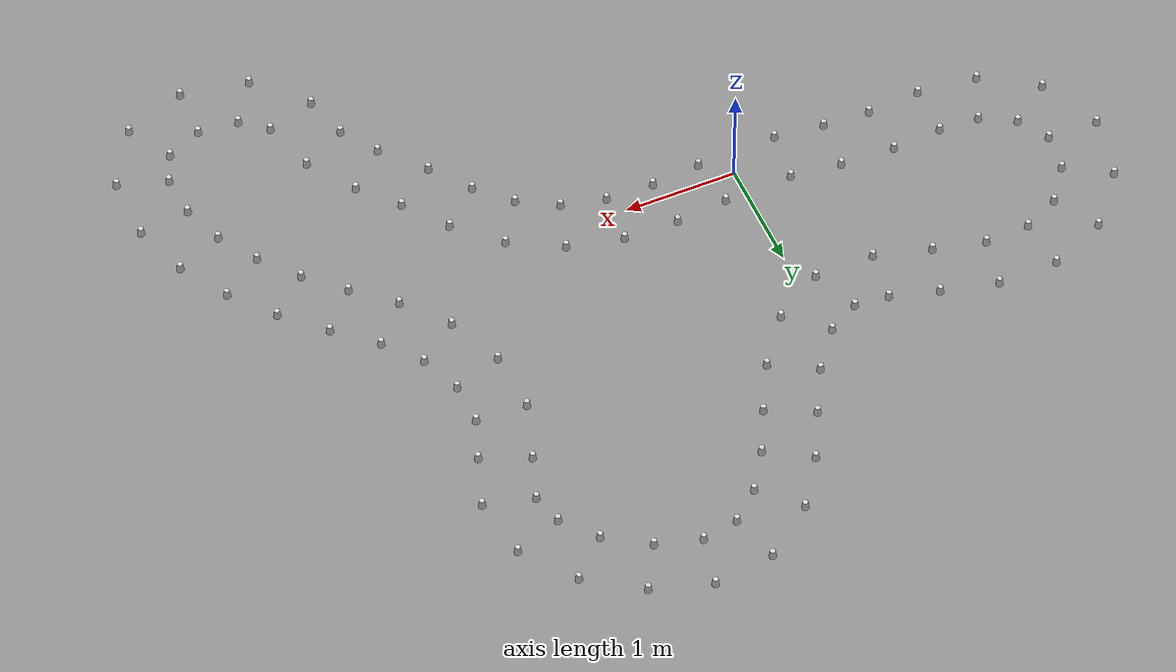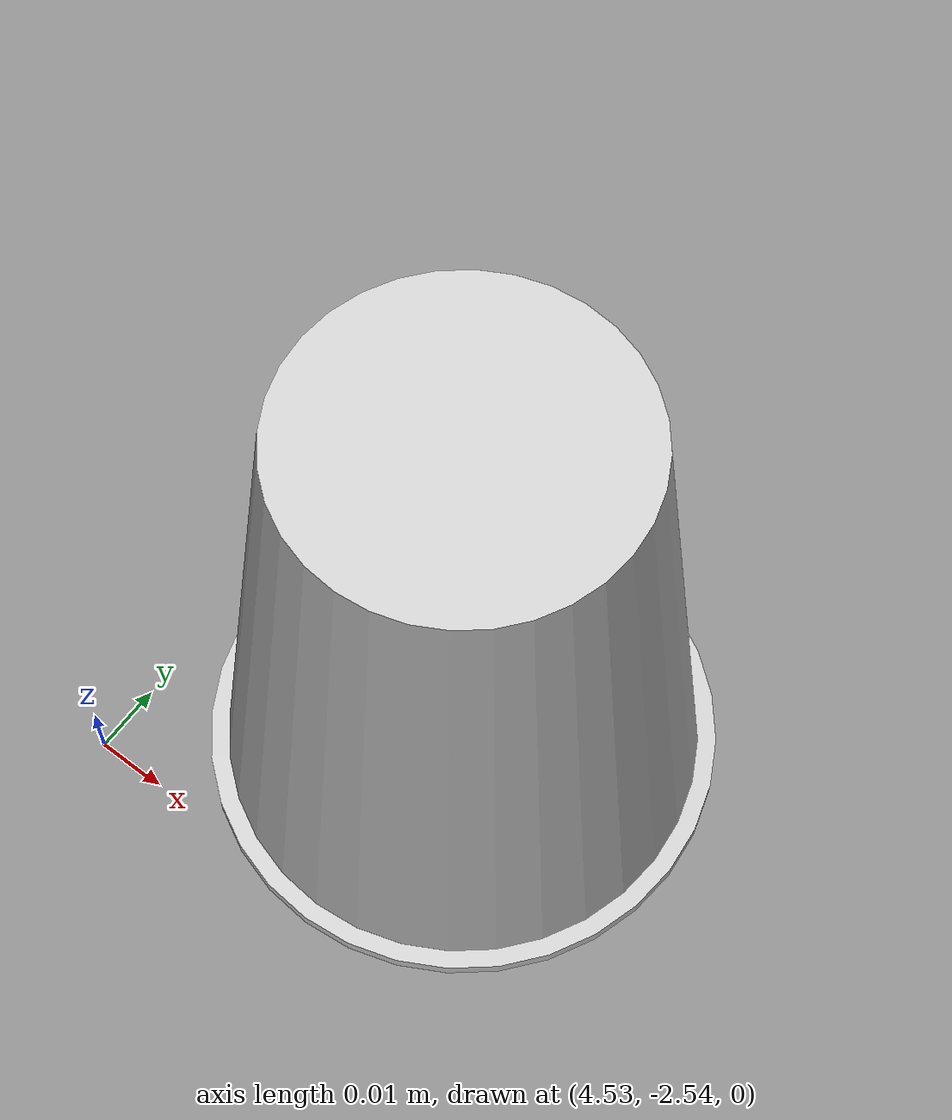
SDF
<?xml version='1.0' encoding='UTF-8'?>
<sdf version="1.4">
  <model name="some track">
    <include>
      <uri>model://cone_yellow</uri>
      <pose>0.24693583645677328 -0.1957721741011249 0 0 0 0</pose>
      <name>cone_right_0</name>
    </include>
    <include>
      <uri>model://cone_yellow</uri>
      <pose>0.687718513146271 -0.1581840988520936 0 0 0 0</pose>
      <name>cone_right_1</name>
    </include>
    <include>
      <uri>model://cone_yellow</uri>
      <pose>1.1137197531686351 -0.17254207978178632 0 0 0 0</pose>
      <name>cone_right_2</name>
    </include>
    <include>
      <uri>model://cone_yellow</uri>
      <pose>1.5007943865245843 -0.26890184732497646 0 0 0 0</pose>
      <name>cone_right_3</name>
    </include>
    <include>
      <uri>model://cone_yellow</uri>
      <pose>1.837960462928621 -0.4650958581177056 0 0 0 0</pose>
      <name>cone_right_4</name>
    </include>
    <include>
      <uri>model://cone_yellow</uri>
      <pose>2.116023041918581 -0.7443159949852778 0 0 0 0</pose>
      <name>cone_right_5</name>
    </include>
    <include>
      <uri>model://cone_yellow</uri>
      <pose>2.376532147485934 -1.0886685138947811 0 0 0 0</pose>
      <name>cone_right_6</name>
    </include>
    <include>
      <uri>model://cone_yellow</uri>
      <pose>2.6965921720351846 -1.4488524196721646 0 0 0 0</pose>
      <name>cone_right_7</name>
    </include>
    <include>
      <uri>model://cone_yellow</uri>
      <pose>2.9093970250667223 -1.7723941959034732 0 0 0 0</pose>
      <name>cone_right_8</name>
    </include>
    <include>
      <uri>model://cone_yellow</uri>
      <pose>3.0184698517527244 -2.169563489303818 0 0 0 0</pose>
      <name>cone_right_9</name>
    </include>
    <include>
      <uri>model://cone_yellow</uri>
      <pose>3.4227010066248345 -2.59903990443544 0 0 0 0</pose>
      <name>cone_right_10</name>
    </include>
    <include>
      <uri>model://cone_yellow</uri>
      <pose>4.018624793988537 -2.7101785536026104 0 0 0 0</pose>
      <name>cone_right_11</name>
    </include>
    <include>
      <uri>model://cone_yellow</uri>
      <pose>4.568513825287126 -2.5082833804780855 0 0 0 0</pose>
      <name>cone_right_12</name>
    </include>
    <include>
      <uri>model://cone_yellow</uri>
      <pose>4.8793752050183095 -2.001926898891995 0 0 0 0</pose>
      <name>cone_right_13</name>
    </include>
    <include>
      <uri>model://cone_yellow</uri>
      <pose>4.8752696788016685 -1.4339553794903679 0 0 0 0</pose>
      <name>cone_right_14</name>
    </include>
    <include>
      <uri>model://cone_yellow</uri>
      <pose>4.709673000502663 -0.9433987833088895 0 0 0 0</pose>
      <name>cone_right_15</name>
    </include>
    <include>
      <uri>model://cone_yellow</uri>
      <pose>4.452245313722043 -0.5212178157244662 0 0 0 0</pose>
      <name>cone_right_16</name>
    </include>
    <include>
      <uri>model://cone_yellow</uri>
      <pose>4.145385225694219 -0.1515379688195705 0 0 0 0</pose>
      <name>cone_right_17</name>
    </include>
    <include>
      <uri>model://cone_yellow</uri>
      <pose>3.803266558735652 0.17940921555368877 0 0 0 0</pose>
      <name>cone_right_18</name>
    </include>
    <include>
      <uri>model://cone_yellow</uri>
      <pose>3.464017241152721 0.48160857900245346 0 0 0 0</pose>
      <name>cone_right_19</name>
    </include>
    <include>
      <uri>model://cone_yellow</uri>
      <pose>3.204417426974371 0.7947210743200358 0 0 0 0</pose>
      <name>cone_right_20</name>
    </include>
    <include>
      <uri>model://cone_yellow</uri>
      <pose>3.058804639892882 1.1580623578441172 0 0 0 0</pose>
      <name>cone_right_21</name>
    </include>
    <include>
      <uri>model://cone_yellow</uri>
      <pose>3.049937292447074 1.5361727706969035 0 0 0 0</pose>
      <name>cone_right_22</name>
    </include>
    <include>
      <uri>model://cone_yellow</uri>
      <pose>3.1856457085060654 1.9009374915590203 0 0 0 0</pose>
      <name>cone_right_23</name>
    </include>
    <include>
      <uri>model://cone_yellow</uri>
      <pose>3.341878257253031 2.349448224229498 0 0 0 0</pose>
      <name>cone_right_24</name>
    </include>
    <include>
      <uri>model://cone_yellow</uri>
      <pose>3.257705558279006 2.8954493163244583 0 0 0 0</pose>
      <name>cone_right_25</name>
    </include>
    <include>
      <uri>model://cone_yellow</uri>
      <pose>2.911240825032724 3.3478035837006024 0 0 0 0</pose>
      <name>cone_right_26</name>
    </include>
    <include>
      <uri>model://cone_yellow</uri>
      <pose>2.4385916472709006 3.6705464178096556 0 0 0 0</pose>
      <name>cone_right_27</name>
    </include>
    <include>
      <uri>model://cone_yellow</uri>
      <pose>1.9131416263064103 3.837380940281674 0 0 0 0</pose>
      <name>cone_right_28</name>
    </include>
    <include>
      <uri>model://cone_yellow</uri>
      <pose>1.370520145132172 3.7719258975891514 0 0 0 0</pose>
      <name>cone_right_29</name>
    </include>
    <include>
      <uri>model://cone_yellow</uri>
      <pose>0.9213304028117087 3.434265697195131 0 0 0 0</pose>
      <name>cone_right_30</name>
    </include>
    <include>
      <uri>model://cone_yellow</uri>
      <pose>0.6314528300619227 3.0167403950327163 0 0 0 0</pose>
      <name>cone_right_31</name>
    </include>
    <include>
      <uri>model://cone_yellow</uri>
      <pose>0.4220879117415506 2.599865472435649 0 0 0 0</pose>
      <name>cone_right_32</name>
    </include>
    <include>
      <uri>model://cone_yellow</uri>
      <pose>0.21195196684621562 2.2066454946115313 0 0 0 0</pose>
      <name>cone_right_33</name>
    </include>
    <include>
      <uri>model://cone_yellow</uri>
      <pose>-0.053263351039372187 1.8703008129700207 0 0 0 0</pose>
      <name>cone_right_34</name>
    </include>
    <include>
      <uri>model://cone_yellow</uri>
      <pose>-0.33382569036685933 1.7170096764375196 0 0 0 0</pose>
      <name>cone_right_35</name>
    </include>
    <include>
      <uri>model://cone_yellow</uri>
      <pose>-0.6385413151707207 1.744419129415787 0 0 0 0</pose>
      <name>cone_right_36</name>
    </include>
    <include>
      <uri>model://cone_yellow</uri>
      <pose>-1.0579503950144333 1.866682178784307 0 0 0 0</pose>
      <name>cone_right_37</name>
    </include>
    <include>
      <uri>model://cone_yellow</uri>
      <pose>-1.5525563156680833 1.9907312721375567 0 0 0 0</pose>
      <name>cone_right_38</name>
    </include>
    <include>
      <uri>model://cone_yellow</uri>
      <pose>-2.090162137294129 1.9867756647053567 0 0 0 0</pose>
      <name>cone_right_39</name>
    </include>
    <include>
      <uri>model://cone_yellow</uri>
      <pose>-2.596152642173857 1.770350263438195 0 0 0 0</pose>
      <name>cone_right_40</name>
    </include>
    <include>
      <uri>model://cone_yellow</uri>
      <pose>-2.96758864501289 1.3234271153902024 0 0 0 0</pose>
      <name>cone_right_41</name>
    </include>
    <include>
      <uri>model://cone_yellow</uri>
      <pose>-3.0822139109411797 0.7555486078397631 0 0 0 0</pose>
      <name>cone_right_42</name>
    </include>
    <include>
      <uri>model://cone_yellow</uri>
      <pose>-2.8313702042026963 0.20967239911768396 0 0 0 0</pose>
      <name>cone_right_43</name>
    </include>
    <include>
      <uri>model://cone_yellow</uri>
      <pose>-2.350594258478776 -0.10275434743717086 0 0 0 0</pose>
      <name>cone_right_44</name>
    </include>
    <include>
      <uri>model://cone_yellow</uri>
      <pose>-1.8168194077321023 -0.1632612554917857 0 0 0 0</pose>
      <name>cone_right_45</name>
    </include>
    <include>
      <uri>model://cone_yellow</uri>
      <pose>-1.338288537302475 -0.1353909571839961 0 0 0 0</pose>
      <name>cone_right_46</name>
    </include>
    <include>
      <uri>model://cone_yellow</uri>
      <pose>-0.9188385622249163 -0.15945568321411724 0 0 0 0</pose>
      <name>cone_right_47</name>
    </include>
    <include>
      <uri>model://cone_yellow</uri>
      <pose>-0.4786666525877293 -0.2137008684201884 0 0 0 0</pose>
      <name>cone_right_48</name>
    </include>
    <include>
      <uri>model://cone_blue</uri>
      <pose>0.1908956617935789 0.2507247450637431 0 0 0 0</pose>
      <name>cone_left_0</name>
    </include>
    <include>
      <uri>model://cone_blue</uri>
      <pose>0.6579791922059427 0.2908321289058886 0 0 0 0</pose>
      <name>cone_left_1</name>
    </include>
    <include>
      <uri>model://cone_blue</uri>
      <pose>1.1458207421789246 0.2763114893301918 0 0 0 0</pose>
      <name>cone_left_2</name>
    </include>
    <include>
      <uri>model://cone_blue</uri>
      <pose>1.6342122442221352 0.16086515379004176 0 0 0 0</pose>
      <name>cone_left_3</name>
    </include>
    <include>
      <uri>model://cone_blue</uri>
      <pose>2.08621068111179 -0.0897668968423877 0 0 0 0</pose>
      <name>cone_left_4</name>
    </include>
    <include>
      <uri>model://cone_blue</uri>
      <pose>2.4512703734176506 -0.44413400564755534 0 0 0 0</pose>
      <name>cone_left_5</name>
    </include>
    <include>
      <uri>model://cone_blue</uri>
      <pose>2.736036556105318 -0.8180089857358279 0 0 0 0</pose>
      <name>cone_left_6</name>
    </include>
    <include>
      <uri>model://cone_blue</uri>
      <pose>3.0252326952248167 -1.14145136808378 0 0 0 0</pose>
      <name>cone_left_7</name>
    </include>
    <include>
      <uri>model://cone_blue</uri>
      <pose>3.30703919093109 -1.5617269038842934 0 0 0 0</pose>
      <name>cone_left_8</name>
    </include>
    <include>
      <uri>model://cone_blue</uri>
      <pose>3.4494972378665243 -2.0402754681266595 0 0 0 0</pose>
      <name>cone_left_9</name>
    </include>
    <include>
      <uri>model://cone_blue</uri>
      <pose>3.6718231432334005 -2.2242891058351133 0 0 0 0</pose>
      <name>cone_left_10</name>
    </include>
    <include>
      <uri>model://cone_blue</uri>
      <pose>4.028768658954543 -2.2602928992374687 0 0 0 0</pose>
      <name>cone_left_11</name>
    </include>
    <include>
      <uri>model://cone_blue</uri>
      <pose>4.342724544954671 -2.11902870691982 0 0 0 0</pose>
      <name>cone_left_12</name>
    </include>
    <include>
      <uri>model://cone_blue</uri>
      <pose>4.452408515359181 -1.8598021441111148 0 0 0 0</pose>
      <name>cone_left_13</name>
    </include>
    <include>
      <uri>model://cone_blue</uri>
      <pose>4.428544206128782 -1.4881434968703398 0 0 0 0</pose>
      <name>cone_left_14</name>
    </include>
    <include>
      <uri>model://cone_blue</uri>
      <pose>4.2952613123003225 -1.1187924909533944 0 0 0 0</pose>
      <name>cone_left_15</name>
    </include>
    <include>
      <uri>model://cone_blue</uri>
      <pose>4.079676312948535 -0.7735912288698104 0 0 0 0</pose>
      <name>cone_left_16</name>
    </include>
    <include>
      <uri>model://cone_blue</uri>
      <pose>3.8086948292764107 -0.4501004864938748 0 0 0 0</pose>
      <name>cone_left_17</name>
    </include>
    <include>
      <uri>model://cone_blue</uri>
      <pose>3.498549758157664 -0.1517216821975098 0 0 0 0</pose>
      <name>cone_left_18</name>
    </include>
    <include>
      <uri>model://cone_blue</uri>
      <pose>3.161138287819867 0.14879580937365 0 0 0 0</pose>
      <name>cone_left_19</name>
    </include>
    <include>
      <uri>model://cone_blue</uri>
      <pose>2.841867417681578 0.5281549647678355 0 0 0 0</pose>
      <name>cone_left_20</name>
    </include>
    <include>
      <uri>model://cone_blue</uri>
      <pose>2.630904382482462 1.018773558193549 0 0 0 0</pose>
      <name>cone_left_21</name>
    </include>
    <include>
      <uri>model://cone_blue</uri>
      <pose>2.6006372642135154 1.5612623029628445 0 0 0 0</pose>
      <name>cone_left_22</name>
    </include>
    <include>
      <uri>model://cone_blue</uri>
      <pose>2.7712960281456587 2.0764776362132524 0 0 0 0</pose>
      <name>cone_left_23</name>
    </include>
    <include>
      <uri>model://cone_blue</uri>
      <pose>2.9074623977988168 2.466848654614811 0 0 0 0</pose>
      <name>cone_left_24</name>
    </include>
    <include>
      <uri>model://cone_blue</uri>
      <pose>2.8336821757424393 2.744770283070828 0 0 0 0</pose>
      <name>cone_left_25</name>
    </include>
    <include>
      <uri>model://cone_blue</uri>
      <pose>2.5857723729778392 3.037045982479012 0 0 0 0</pose>
      <name>cone_left_26</name>
    </include>
    <include>
      <uri>model://cone_blue</uri>
      <pose>2.213862778120631 3.280678574341589 0 0 0 0</pose>
      <name>cone_left_27</name>
    </include>
    <include>
      <uri>model://cone_blue</uri>
      <pose>1.8187262576914365 3.3973971472059534 0 0 0 0</pose>
      <name>cone_left_28</name>
    </include>
    <include>
      <uri>model://cone_blue</uri>
      <pose>1.4949971244049287 3.3394845933279496 0 0 0 0</pose>
      <name>cone_left_29</name>
    </include>
    <include>
      <uri>model://cone_blue</uri>
      <pose>1.2364234978969162 3.112992695793481 0 0 0 0</pose>
      <name>cone_left_30</name>
    </include>
    <include>
      <uri>model://cone_blue</uri>
      <pose>1.016068440606192 2.783136387948807 0 0 0 0</pose>
      <name>cone_left_31</name>
    </include>
    <include>
      <uri>model://cone_blue</uri>
      <pose>0.827248125613461 2.4040461651769727 0 0 0 0</pose>
      <name>cone_left_32</name>
    </include>
    <include>
      <uri>model://cone_blue</uri>
      <pose>0.6032833918019629 1.984475028882838 0 0 0 0</pose>
      <name>cone_left_33</name>
    </include>
    <include>
      <uri>model://cone_blue</uri>
      <pose>0.2834933610653708 1.5718130965520694 0 0 0 0</pose>
      <name>cone_left_34</name>
    </include>
    <include>
      <uri>model://cone_blue</uri>
      <pose>-0.16519631299239157 1.2997997375742425 0 0 0 0</pose>
      <name>cone_left_35</name>
    </include>
    <include>
      <uri>model://cone_blue</uri>
      <pose>-0.6990880452743178 1.298510962330049 0 0 0 0</pose>
      <name>cone_left_36</name>
    </include>
    <include>
      <uri>model://cone_blue</uri>
      <pose>-1.191286450952609 1.4368897914775383 0 0 0 0</pose>
      <name>cone_left_37</name>
    </include>
    <include>
      <uri>model://cone_blue</uri>
      <pose>-1.6447595301049103 1.5502785876781284 0 0 0 0</pose>
      <name>cone_left_38</name>
    </include>
    <include>
      <uri>model://cone_blue</uri>
      <pose>-2.043860449565923 1.5391640543627298 0 0 0 0</pose>
      <name>cone_left_39</name>
    </include>
    <include>
      <uri>model://cone_blue</uri>
      <pose>-2.3654940168489773 1.38396108325423 0 0 0 0</pose>
      <name>cone_left_40</name>
    </include>
    <include>
      <uri>model://cone_blue</uri>
      <pose>-2.5855330831231336 1.0856592714139772 0 0 0 0</pose>
      <name>cone_left_41</name>
    </include>
    <include>
      <uri>model://cone_blue</uri>
      <pose>-2.6324158694933466 0.742068180929113 0 0 0 0</pose>
      <name>cone_left_42</name>
    </include>
    <include>
      <uri>model://cone_blue</uri>
      <pose>-2.466961008305854 0.473691220313857 0 0 0 0</pose>
      <name>cone_left_43</name>
    </include>
    <include>
      <uri>model://cone_blue</uri>
      <pose>-2.1688826973030344 0.308926242990742 0 0 0 0</pose>
      <name>cone_left_44</name>
    </include>
    <include>
      <uri>model://cone_blue</uri>
      <pose>-1.8108188763772024 0.2866987356446029 0 0 0 0</pose>
      <name>cone_left_45</name>
    </include>
    <include>
      <uri>model://cone_blue</uri>
      <pose>-1.3641507801119486 0.31386525523477926 0 0 0 0</pose>
      <name>cone_left_46</name>
    </include>
    <include>
      <uri>model://cone_blue</uri>
      <pose>-0.8774231375681328 0.2886344445509321 0 0 0 0</pose>
      <name>cone_left_47</name>
    </include>
    <include>
      <uri>model://cone_blue</uri>
      <pose>-0.42554356082849804 0.23315250475935947 0 0 0 0</pose>
      <name>cone_left_48</name>
    </include>

  </model>
</sdf>

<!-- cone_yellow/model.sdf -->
<sdf version='1.4'>
  <model name="cone_yellow">
    <link name="link">
    <collision name="collision"><geometry><box><size> 0.05 0.05 0.01</size>
             </box></geometry></collision>
      <visual name="visual">
        <geometry>
          <mesh>
            <uri>model://cup.dae</uri>
            <scale>1 1 1</scale>
          </mesh>
        </geometry>
        <material>
            <script>
              <uri>model://cone_yellow/materials/scripts</uri>
              <uri>model://cone_yellow/materials/textures</uri>
              <name>cone_yellow/Image</name>
            </script>
        </material>
      </visual>
    </link>
  </model>
</sdf>

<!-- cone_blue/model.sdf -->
<sdf version='1.4'>
  <model name="cone_blue">
    <link name="link">
    <collision name="collision"><geometry><box><size> 0.05 0.05 0.01</size>
             </box></geometry></collision>
      <visual name="visual">
        <geometry>
          <mesh>
            <uri>model://cup.dae</uri>
            <scale>1 1 1</scale>
          </mesh>
        </geometry>
        <material>
            <script>
              <uri>model://cone_blue/materials/scripts</uri>
              <uri>model://cone_blue/materials/textures</uri>
              <name>cone_blue/Image</name>
            </script>
        </material>
      </visual>
    </link>
  </model>
</sdf>
